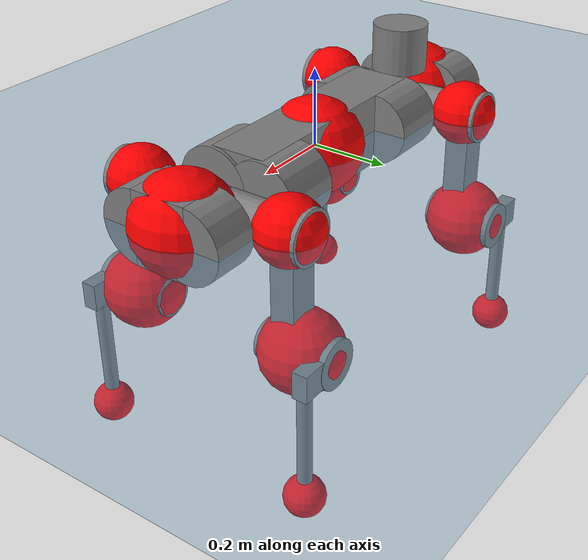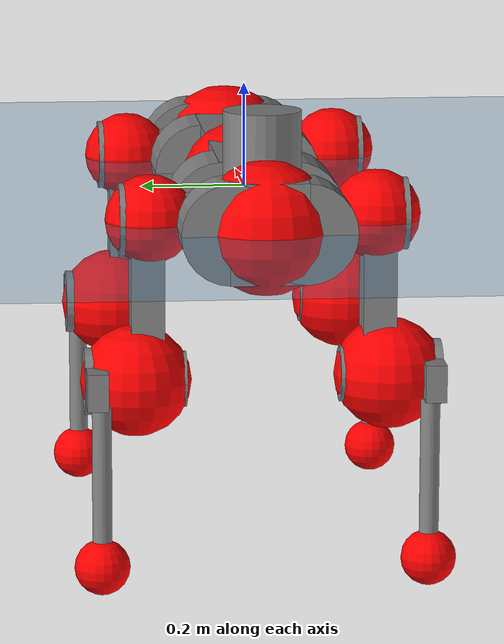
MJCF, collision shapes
<mujoco model="anymal_c">
  <compiler angle="radian" assetdir="assets" balanceinertia="true" inertiafromgeom="false"/>

  <option timestep="0.005" density="1.2" viscosity="2e-05"/>

  <size nkey="1"/>

  <visual>
    <quality shadowsize="8192"/>
    <map shadowclip="0.5"/>
  </visual>

  <default>
    <default class="/">
      <material specular="0" shininess="0.25"/>
      <geom contype="0" conaffinity="0" group="1" solref="-1000 -80"/>
      <site size="0.01 0.005 0.005" group="5"/>
      <general forcelimited="true" forcerange="-80 80" biastype="affine" gainprm="80" biasprm="0 -80 -2"/>
      <default class="anymal_c">
        <joint armature="0.01" damping="0.01" frictionloss="0.1"/>
        <default class="visual">
          <geom type="mesh" group="2"/>
          <default class="visual_zflip"/>
        </default>
        <default class="collision">
          <geom type="cylinder" group="3"/>
          <default class="foot">
            <geom size="0.03 0 0" type="sphere" condim="6" priority="1" friction="0.8 0.02 0.01" solimp="0.015 1 0.03"/>
          </default>
        </default>
      </default>
      <default class="reward_collision_sphere">
        <geom group="5" rgba="1 0 0 1"/>
      </default>
    </default>
  </default>

  <asset>
    <texture type="skybox" colorspace="auto" name="//unnamed_texture_0" builtin="gradient" rgb1="0.95 0.95 0.95" rgb2="0.95 0.95 0.95" width="100" height="600"/>
    <texture type="2d" colorspace="auto" name="texplane" builtin="checker" rgb1="0.345 0.575 0.748" rgb2="0.345 0.575 0.748" markrgb="1 1 1" width="512" height="512"/>
    <texture type="2d" colorspace="linear" name="base" file="base.png"/>
    <texture type="2d" colorspace="linear" name="top_shell" file="top_shell.png"/>
    <texture type="2d" colorspace="linear" name="bottom_shell" file="bottom_shell.png"/>
    <texture type="2d" colorspace="linear" name="remote" file="remote.png"/>
    <texture type="2d" colorspace="linear" name="hatch" file="hatch.png"/>
    <texture type="2d" colorspace="linear" name="handle" file="handle.png"/>
    <texture type="2d" colorspace="linear" name="face" file="face.png"/>
    <texture type="2d" colorspace="linear" name="battery" file="battery.png"/>
    <texture type="2d" colorspace="linear" name="lidar_cage" file="lidar_cage.png"/>
    <texture type="2d" colorspace="linear" name="depth_camera" file="depth_camera.png"/>
    <texture type="2d" colorspace="linear" name="wide_angle_camera" file="wide_angle_camera.png"/>
    <texture type="2d" colorspace="linear" name="lidar" file="lidar.png"/>
    <texture type="2d" colorspace="linear" name="drive" file="drive.png"/>
    <texture type="2d" colorspace="linear" name="hip_l" file="hip_l.png"/>
    <texture type="2d" colorspace="linear" name="shank_l" file="shank_l.png"/>
    <texture type="2d" colorspace="linear" name="foot" file="foot.png"/>
    <texture type="2d" colorspace="linear" name="thigh" file="thigh.png"/>
    <texture type="2d" colorspace="linear" name="shank_r" file="shank_r.png"/>
    <texture type="2d" colorspace="linear" name="hip_r" file="hip_r.png"/>
    <material name="MatPlane" class="/" texture="texplane" texuniform="true" texrepeat="2 2" specular="0.9" shininess="0.5"/>
    <material name="black_plastic" class="/" rgba="0.007 0.007 0.007 1"/>
    <material name="green" class="/" rgba="0.052 0.178 0.033 1"/>
    <material name="red" class="/" rgba="0.178 0.006 0.005 1"/>
    <material name="yellow" class="/" rgba="0.178 0.119 0.006 1"/>
    <material name="lwl" class="/" rgba="0.8 0.8 0.8 1"/>
    <material name="base" class="/" texture="base"/>
    <material name="top_shell" class="/" texture="top_shell"/>
    <material name="bottom_shell" class="/" texture="bottom_shell"/>
    <material name="hip_l" class="/" texture="hip_l"/>
    <material name="thigh" class="/" texture="thigh"/>
    <material name="shank_l" class="/" texture="shank_l"/>
    <material name="foot" class="/" texture="foot"/>
    <material name="hip_r" class="/" texture="hip_r"/>
    <material name="shank" class="/" texture="shank_r"/>
    <material name="hatch" class="/" texture="hatch"/>
    <material name="remote" class="/" texture="remote"/>
    <material name="handle" class="/" texture="handle"/>
    <material name="face" class="/" texture="face"/>
    <material name="depth_camera" class="/" texture="depth_camera"/>
    <material name="wide_angle_camera" class="/" texture="wide_angle_camera"/>
    <material name="battery" class="/" texture="battery"/>
    <material name="lidar_cage" class="/" texture="lidar_cage"/>
    <material name="lidar" class="/" texture="lidar"/>
    <material name="drive" class="/" texture="drive"/>
    <mesh name="base_0" class="/" file="base_0.obj"/>
    <mesh name="base_1" class="/" file="base_1.obj"/>
    <mesh name="base_2" class="/" file="base_2.obj"/>
    <mesh name="base_3" class="/" file="base_3.obj"/>
    <mesh name="base_4" class="/" file="base_4.obj"/>
    <mesh name="base_5" class="/" file="base_5.obj"/>
    <mesh name="top_shell" class="/" file="top_shell.obj"/>
    <mesh name="bottom_shell" class="/" file="bottom_shell.obj"/>
    <mesh name="remote" class="/" file="remote.obj"/>
    <mesh name="handle" class="/" file="handle.obj"/>
    <mesh name="face" class="/" file="face.obj"/>
    <mesh name="wide_angle_camera" class="/" file="wide_angle_camera.obj"/>
    <mesh name="depth_camera" class="/" file="depth_camera.obj"/>
    <mesh name="battery" class="/" file="battery.obj"/>
    <mesh name="lidar_cage" class="/" file="lidar_cage.obj"/>
    <mesh name="lidar" class="/" file="lidar.obj"/>
    <mesh name="drive" class="/" file="drive.obj"/>
    <mesh name="hip_l" class="/" file="hip_l.obj"/>
    <mesh name="thigh" class="/" file="thigh.obj"/>
    <mesh name="shank_l" class="/" file="shank_l.obj"/>
    <mesh name="foot" class="/" file="foot.obj"/>
    <mesh name="hip_r" class="/" file="hip_r.obj"/>
    <mesh name="hatch" class="/" file="hatch.obj"/>
    <mesh name="shank_r" class="/" file="shank_r.obj"/>
  </asset>

  <worldbody>
    <geom name="floor" class="/" size="100 100 0.125" type="plane" group="0" material="MatPlane"/>
    <light name="toplight_shadow" class="/" pos="0 0 5" dir="0.0990148 0.0990148 -0.990148" type="directional" ambient="0.04 0.04 0.04" diffuse="0.55 0.55 0.55" specular="0.12 0.12 0.12"/>
    <light name="toplight_fill" class="/" pos="0 0 5" dir="0.0990148 0.0990148 -0.990148" type="directional" castshadow="false" ambient="0.04 0.04 0.04" diffuse="0.3 0.3 0.3" specular="0.08 0.08 0.08"/>
    <body name="trunk" childclass="anymal_c" pos="-3.85258e-06 -0.000228128 0.000962568" quat="1 0.000492006 -0.000740317 -4.13404e-05">
      <inertial pos="0.00116386 -0.0026262 0.0501432" quat="0.498767 0.499152 0.50093 0.501147" mass="22.1877" diaginertia="0.958789 0.549453 0.292499"/>
      <joint name="//unnamed_joint_0" type="free" armature="0" damping="0" frictionloss="0"/>
      <geom name="//unnamed_geom_1" class="visual" material="green" mesh="base_0"/>
      <geom name="//unnamed_geom_2" class="visual" material="yellow" mesh="base_1"/>
      <geom name="//unnamed_geom_3" class="visual" material="red" mesh="base_2"/>
      <geom name="//unnamed_geom_4" class="visual" material="black_plastic" mesh="base_3"/>
      <geom name="//unnamed_geom_5" class="visual" material="lwl" mesh="base_4"/>
      <geom name="//unnamed_geom_6" class="visual" material="base" mesh="base_5"/>
      <geom name="trunk_1" class="collision" size="0.302069 0.0729131 0.0937455" type="box"/>
      <geom name="trunk_2" class="collision" size="0.0937455 0.0755172" pos="0.23595 0.0683474 0" quat="0.707107 0 0.707107 0"/>
      <geom name="trunk_3" class="collision" size="0.0937455 0.0755172" pos="-0.23595 0.0683474 0" quat="0.707107 0 0.707107 0"/>
      <geom name="trunk_4" class="collision" size="0.0937455 0.0755172" pos="0.23595 -0.0683474 0" quat="0.707107 0 0.707107 0"/>
      <geom name="trunk_5" class="collision" size="0.0937455 0.0755172" pos="-0.23595 -0.0683474 0" quat="0.707107 0 0.707107 0"/>
      <geom name="//unnamed_geom_12" class="visual" material="top_shell" mesh="top_shell"/>
      <geom name="//unnamed_geom_13" class="visual" material="bottom_shell" mesh="bottom_shell"/>
      <geom name="//unnamed_geom_14" class="visual" material="remote" mesh="remote"/>
      <geom name="//unnamed_geom_15" class="visual" material="handle" mesh="handle"/>
      <geom name="//unnamed_geom_16" class="visual" pos="0.44966 0 0" quat="1 0 0 0" material="face" mesh="face"/>
      <geom name="trunk_6" class="collision" size="0.0572889 0.0729131 0.0937455" pos="0.509326 0 0" type="box"/>
      <geom name="//unnamed_geom_18" class="collision" size="0.0937455 0.0572889" pos="0.509326 0.0683474 0" quat="0.707107 0 0.707107 0"/>
      <geom name="//unnamed_geom_19" class="collision" size="0.0937455 0.0572889" pos="0.509326 -0.0683474 0" quat="0.707107 0 0.707107 0"/>
      <geom name="//unnamed_geom_20" class="visual" pos="0.500809 0 -0.030897" quat="0.965926 0 0.258819 0" material="depth_camera" mesh="depth_camera"/>
      <geom name="//unnamed_geom_21" class="visual" pos="0.556516 0 0.0159226" material="wide_angle_camera" mesh="wide_angle_camera"/>
      <geom name="//unnamed_geom_22" class="visual_zflip" pos="-0.44966 0 0" quat="0 0 0 1" material="face" mesh="face"/>
      <geom name="trunk_7" class="collision" size="0.0572889 0.0729131 0.0937455" pos="-0.509326 0 0" quat="0 0 0 1" type="box"/>
      <geom name="//unnamed_geom_24" class="collision" size="0.0937455 0.0572889" pos="-0.509326 -0.0683474 0" quat="0 -0.707107 0 0.707107"/>
      <geom name="//unnamed_geom_25" class="collision" size="0.0937455 0.0572889" pos="-0.509326 0.0683474 0" quat="0 -0.707107 0 0.707107"/>
      <geom name="//unnamed_geom_26" class="visual" pos="-0.500809 0 -0.030897" quat="0 -0.258819 0 0.965926" material="depth_camera" mesh="depth_camera"/>
      <geom name="//unnamed_geom_27" class="visual_zflip" pos="-0.556516 0 0.0159226" quat="0 0 0 1" material="wide_angle_camera" mesh="wide_angle_camera"/>
      <geom name="//unnamed_geom_28" class="visual" material="battery" mesh="battery"/>
      <geom name="//unnamed_geom_29" class="visual" pos="0 0.0732311 0.0310596" quat="0.683013 -0.183013 0.183013 0.683013" material="depth_camera" mesh="depth_camera"/>
      <geom name="//unnamed_geom_30" class="visual" pos="0 -0.0732311 0.0310596" quat="0.683013 0.183013 0.183013 -0.683013" material="depth_camera" mesh="depth_camera"/>
      <geom name="//unnamed_geom_31" class="visual" pos="-0.394877 0 0.078177" quat="1 0 0 0" material="lidar_cage" mesh="lidar_cage"/>
      <geom name="trunk_8" class="collision" size="0.0729131 0.062497" pos="-0.394877 0 0.141995"/>
      <geom name="//unnamed_geom_33" class="visual" pos="-0.394877 -4.26012e-05 0.151249" quat="0.707107 0 0 -0.707107" material="lidar" mesh="lidar"/>
      <geom name="//unnamed_geom_34" class="visual" pos="0.325339 0.101576 -1.50493e-09" quat="0.258819 0.965926 0 0" material="drive" mesh="drive"/>
      <geom name="//unnamed_geom_35" class="visual" pos="0.325339 -0.101576 1.50493e-09" quat="0.258819 -0.965926 0 0" material="drive" mesh="drive"/>
      <geom name="//unnamed_geom_36" class="visual" pos="-0.325339 0.101576 1.50493e-09" quat="0 0 0.965926 -0.258819" material="drive" mesh="drive"/>
      <geom name="//unnamed_geom_37" class="visual" pos="-0.325339 -0.101576 -1.50493e-09" quat="0 0 -0.965926 -0.258819" material="drive" mesh="drive"/>
      <geom name="//unnamed_geom_38" class="visual" pos="0.12584 0 0.0776452" quat="1 0 0 0" material="hatch" mesh="hatch"/>
      <geom name="//unnamed_geom_39" class="reward_collision_sphere" size="0.124994"/>
      <geom name="//unnamed_geom_40" class="reward_collision_sphere" size="0.124994" pos="0.488172 0 0"/>
      <geom name="//unnamed_geom_41" class="reward_collision_sphere" size="0.124994" pos="-0.488172 0 0"/>
      <site name="imu" pos="0.281463 0.00720951 0.0375724" size="0.0104162"/>
      <camera name="track" pos="0 -1.95278 0" quat="0.707107 0.707107 0 0" mode="trackcom"/>
      <camera name="ego_camera" pos="0.488172 0 -0.0425453" quat="-0.5 -0.5 0.5 0.5"/>
      <body name="LF_HIP" pos="0.322948 0.098892 -0.00141783" quat="0.258942 0.965893 0.000434791 0.000276867">
        <inertial pos="0.0613595 -0.0174695 -0.00772798" quat="-0.127959 0.710296 -0.134661 0.678949" mass="3.16806" diaginertia="0.00869177 0.00413423 0.00437821"/>
        <joint name="LF_HAA" pos="0 0 0" axis="0.999997 0.0019429 0.00153011" range="-0.724165 0.520042" armature="0.0103152" damping="0.0235804" frictionloss="0.0898132"/>
        <geom name="//unnamed_geom_42" class="visual" pos="0 -8.85281e-05 1.45407e-05" quat="0.258819 -0.965926 0 0" material="hip_l" mesh="hip_l"/>
        <geom name="//unnamed_geom_43" class="visual" pos="0.0649811 -0.0773417 -0.0452985" quat="0.183013 -0.683013 0.683013 0.183013" material="drive" mesh="drive"/>
        <geom name="//unnamed_geom_44" class="collision" size="0.0520808 0.0729131" pos="0.0649811 -0.0116774 -0.00734438" quat="-0.353553 -0.612372 0.612372 -0.353553"/>
        <body name="LF_THIGH" pos="0.0630052 -0.0685848 -0.0431667" quat="0.181782 -0.683029 0.683287 0.183155">
          <inertial pos="0.033185 0.000135303 -0.25894" quat="0.992542 -0.0187064 -0.0831121 0.0871995" mass="3.38744" diaginertia="0.0460868 0.0262286 0.00579799"/>
          <joint name="LF_HFE" pos="0 0 0" axis="0.999998 -0.000392748 -0.00210579" stiffness="0.00406494" range="-3.09085 3.19261" armature="0.0104315" damping="0.022052" frictionloss="0.0915433"/>
          <geom name="//unnamed_geom_45" class="visual" pos="0.00215743 3.3996e-06 0" quat="0.707107 0 0 -0.707107" material="thigh" mesh="thigh"/>
          <geom name="//unnamed_geom_46" class="collision" size="0.0677051 0.0416647" pos="0.043393 0 0" quat="0.5 0.5 -0.5 -0.5"/>
          <geom name="//unnamed_geom_47" class="collision" size="0.0390606 0.0312485 0.147195" pos="0.0325448 0 -0.150306" quat="0.707107 0 0 -0.707107" type="box"/>
          <geom name="//unnamed_geom_48" class="visual" pos="0.108808 0 -0.303135" quat="1 0 0 0" material="drive" mesh="drive"/>
          <geom name="//unnamed_geom_49" class="collision" size="0.0520808 0.0729131" pos="0.0328702 0 -0.303135" quat="0.707107 0 0.707107 0"/>
          <geom name="//unnamed_geom_50" class="reward_collision_sphere" size="0.0833293" pos="0.0271206 0 0"/>
          <body name="LF_SHANK" pos="0.110149 0.00259809 -0.301834" quat="1 -1.23972e-05 -8.2375e-06 1.04386e-05">
            <inertial pos="0.00550292 -0.0602568 -0.0877828" quat="0.992974 -0.115673 0.00100515 -0.0249444" mass="0.675035" diaginertia="0.0148971 0.00817791 0.00152912"/>
            <joint name="LF_KFE" pos="0 0 0" axis="0.999981 -0.00462425 0.00406526" range="-3.08623 3.14961" armature="0.0108481" damping="0.00436842" frictionloss="0.106814"/>
            <geom name="//unnamed_geom_51" class="visual" pos="0.000703491 0.00375105 0" quat="0.707107 0 0 -0.707107" material="shank_l" mesh="shank_l"/>
            <geom name="LF_kfe_act" class="collision" size="0.062497 0.0208323" pos="0.0216965 0 0" quat="0.5 0.5 -0.5 -0.5"/>
            <geom name="//unnamed_geom_53" class="collision" size="0.0598919 0.0351545 0.0197907" pos="0.0216965 -0.0561415 0" quat="0.5 0.5 -0.5 -0.5" type="box"/>
            <geom name="//unnamed_geom_54" class="visual" pos="0.0141568 -0.0846648 -0.359476" quat="0.382683 0 0 -0.92388" material="foot" mesh="foot"/>
            <geom name="LF_calf" class="collision" size="0.0182283 0.14713" pos="0.014157 -0.0858736 -0.179738" quat="0.707107 0 0 -0.707107"/>
            <geom name="LF_foot" class="foot" size="0.0309052" pos="0.014157 -0.0858736 -0.335544" quat="0.707107 0 0 -0.707107"/>
            <geom name="//unnamed_geom_57" class="reward_collision_sphere" size="0.104162" pos="-0.0542413 0 0"/>
            <geom name="//unnamed_geom_58" class="reward_collision_sphere" size="0.0520808" pos="0.014157 -0.0858736 -0.335544"/>
            <site name="LF_foot" class="foot" pos="0.014157 -0.0858736 -0.335544" quat="0.707107 0 0 -0.707107" size="0.0104162"/>
          </body>
        </body>
      </body>
      <body name="RF_HIP" pos="0.323453 -0.102006 0.000275053" quat="0.258771 -0.965939 -2.09315e-06 -0.000112088">
        <inertial pos="0.0589635 0.0137539 -0.0116436" quat="0.141229 0.674112 0.124817 0.714176" mass="3.13947" diaginertia="0.00839841 0.00444466 0.00427219"/>
        <joint name="RF_HAA" pos="0 0 0" axis="0.999926 0.00647142 0.0103371" range="-0.511895 0.727083" armature="0.0107136" damping="0" frictionloss="0.110173"/>
        <geom name="//unnamed_geom_59" class="visual" pos="0 8.85274e-05 1.45406e-05" quat="0.258819 0.965926 0 0" material="hip_r" mesh="hip_r"/>
        <geom name="//unnamed_geom_60" class="visual" pos="0.0649811 0.0773417 -0.0452985" quat="0.183013 0.683013 0.683013 -0.183013" material="drive" mesh="drive"/>
        <geom name="//unnamed_geom_61" class="collision" size="0.0520808 0.0729131" pos="0.0649811 0.0116774 -0.00734438" quat="-0.353553 0.612372 0.612372 0.353553"/>
        <body name="RF_THIGH" pos="0.0675628 0.0691084 -0.0470534" quat="0.182498 0.682654 0.6837 -0.182299">
          <inertial pos="0.0357521 -0.000632343 -0.263435" quat="0.991931 -0.0051353 -0.0929922 0.0860216" mass="3.62408" diaginertia="0.0443252 0.0258423 0.00591088"/>
          <joint name="RF_HFE" pos="0 0 0" axis="1 -0.00074886 -0.000503854" range="-3.12502 3.15307" armature="0.00912951" damping="0.0103773" frictionloss="0.112368"/>
          <geom name="//unnamed_geom_62" class="visual" pos="0.00215743 3.3996e-06 0" quat="0.707107 0 0 -0.707107" material="thigh" mesh="thigh"/>
          <geom name="//unnamed_geom_63" class="collision" size="0.0677051 0.0416647" pos="0.043393 0 0" quat="0.5 0.5 0.5 0.5"/>
          <geom name="//unnamed_geom_64" class="collision" size="0.0390606 0.0312485 0.147195" pos="0.0325448 0 -0.150306" quat="0.707107 0 0 0.707107" type="box"/>
          <geom name="//unnamed_geom_65" class="visual" pos="0.108808 0 -0.303135" quat="1 0 0 0" material="drive" mesh="drive"/>
          <geom name="//unnamed_geom_66" class="collision" size="0.0520808 0.0729131" pos="0.0328702 0 -0.303135" quat="0.707107 0 0.707107 0"/>
          <geom name="//unnamed_geom_67" class="reward_collision_sphere" size="0.0833293" pos="0.0271206 0 0"/>
          <body name="RF_SHANK" pos="0.10588 0.000636199 -0.30382" quat="0.999999 -0.000272149 -0.000106629 0.00117341">
            <inertial pos="0.0033089 0.0599574 -0.0856245" quat="0.99215 0.12269 -0.00754574 0.0229724" mass="0.709985" diaginertia="0.0161081 0.00829125 0.00158219"/>
            <joint name="RF_KFE" pos="0 0 0" axis="0.999998 -0.000860865 0.00180072" range="-3.1829 3.0852" armature="0.0120244" damping="0.020413" frictionloss="0.113589"/>
            <geom name="//unnamed_geom_68" class="visual" pos="0.000703487 -0.00375104 0" quat="0.707107 0 0 0.707107" material="shank" mesh="shank_r"/>
            <geom name="RF_kfe_act" class="collision" size="0.062497 0.0208323" pos="0.0216965 0 0" quat="0.5 0.5 0.5 0.5"/>
            <geom name="//unnamed_geom_70" class="collision" size="0.0598919 0.0351545 0.0197907" pos="0.0216965 0.0561415 0" quat="0.5 0.5 0.5 0.5" type="box"/>
            <geom name="//unnamed_geom_71" class="visual" pos="0.0141571 0.0846648 -0.359476" quat="0.382683 0 0 0.92388" material="foot" mesh="foot"/>
            <geom name="RF_calf" class="collision" size="0.0182283 0.14713" pos="0.014157 0.0858736 -0.179738" quat="0.707107 0 0 0.707107"/>
            <geom name="RF_foot" class="foot" size="0.0279635" pos="0.014157 0.0858736 -0.335544" quat="0.707107 0 0 0.707107"/>
            <geom name="//unnamed_geom_74" class="reward_collision_sphere" size="0.104162" pos="-0.0542413 0 0"/>
            <geom name="//unnamed_geom_75" class="reward_collision_sphere" size="0.0520808" pos="0.014157 0.0858736 -0.335544"/>
            <site name="RF_foot" class="foot" pos="0.014157 0.0858736 -0.335544" quat="0.707107 0 0 0.707107" size="0.0104162"/>
          </body>
        </body>
      </body>
      <body name="LH_HIP" pos="-0.322311 0.0992769 -0.00171352" quat="8.90652e-05 0.000187105 0.965946 -0.258745">
        <inertial pos="0.0614407 0.0174715 -0.0109245" quat="0.12257 0.675995 0.129183 0.715066" mass="3.22141" diaginertia="0.00919435 0.00450775 0.00446822"/>
        <joint name="LH_HAA" pos="0 0 0" axis="0.999889 -0.00261971 -0.0146703" range="-0.502712 0.745862" armature="0.0110917" damping="0" frictionloss="0.103429"/>
        <geom name="//unnamed_geom_76" class="visual" pos="0 8.85274e-05 1.45406e-05" quat="-0.258819 -0.965926 0 0" material="hip_r" mesh="hip_r"/>
        <geom name="//unnamed_geom_77" class="visual" pos="0.0649811 0.0773417 -0.0452985" quat="0.183013 0.683013 0.683013 -0.183013" material="drive" mesh="drive"/>
        <geom name="//unnamed_geom_78" class="collision" size="0.0520808 0.0729131" pos="0.0649811 0.0116774 -0.00734438" quat="-0.353553 0.612372 0.612372 0.353553"/>
        <body name="LH_THIGH" pos="0.0639365 0.0693896 -0.043749" quat="0.182837 0.682963 0.683075 -0.183142">
          <inertial pos="0.0319666 0.000669601 -0.26326" quat="0.992562 -0.00348863 -0.0810195 0.0907932" mass="3.28572" diaginertia="0.0428884 0.0264885 0.00557648"/>
          <joint name="LH_HFE" pos="0 0 0" axis="0.999999 0.000903989 0.0014069" stiffness="0.0097627" range="-3.18653 3.08496" armature="0.0100984" damping="0" frictionloss="0.105837"/>
          <geom name="//unnamed_geom_79" class="visual" pos="0.00215743 3.3996e-06 0" quat="0.707107 0 0 -0.707107" material="thigh" mesh="thigh"/>
          <geom name="//unnamed_geom_80" class="collision" size="0.0677051 0.0416647" pos="0.043393 0 0" quat="0.5 0.5 -0.5 -0.5"/>
          <geom name="//unnamed_geom_81" class="collision" size="0.0390606 0.0312485 0.147195" pos="0.0325448 0 -0.150306" quat="0.707107 0 0 -0.707107" type="box"/>
          <geom name="//unnamed_geom_82" class="visual" pos="0.108808 0 -0.303135" quat="1 0 0 0" material="drive" mesh="drive"/>
          <geom name="//unnamed_geom_83" class="collision" size="0.0520808 0.0729131" pos="0.0328702 0 -0.303135" quat="0.707107 0 0.707107 0"/>
          <geom name="//unnamed_geom_84" class="reward_collision_sphere" size="0.0833293" pos="0.0271206 0 0"/>
          <body name="LH_SHANK" pos="0.107802 9.97652e-05 -0.304384" quat="1 2.08532e-05 7.5242e-06 -1.31114e-05">
            <inertial pos="0.00811031 0.062333 -0.0864918" quat="0.993868 0.10799 -0.0107383 0.0211859" mass="0.678546" diaginertia="0.0150046 0.00861945 0.00156113"/>
            <joint name="LH_KFE" pos="0 0 0" axis="0.999999 -0.000488142 -0.00102254" range="-3.09018 3.08403" armature="0.011651" damping="0.02124" frictionloss="0.0898306"/>
            <geom name="//unnamed_geom_85" class="visual" pos="0.000703487 -0.00375104 0" quat="-0.707107 0 0 -0.707107" material="shank" mesh="shank_r"/>
            <geom name="LH_kfe_act" class="collision" size="0.062497 0.0208323" pos="0.0216965 0 0" quat="0.5 0.5 -0.5 -0.5"/>
            <geom name="//unnamed_geom_87" class="collision" size="0.0598919 0.0351545 0.0197907" pos="0.0216965 0.0561415 0" quat="0.5 0.5 -0.5 -0.5" type="box"/>
            <geom name="//unnamed_geom_88" class="visual" pos="0.0141571 0.0846648 -0.359476" quat="-0.382683 0 0 -0.92388" material="foot" mesh="foot"/>
            <geom name="LH_calf" class="collision" size="0.0182283 0.14713" pos="0.014157 0.0858736 -0.179738" quat="0.707107 0 0 -0.707107"/>
            <geom name="LH_foot" class="foot" size="0.0353374" pos="0.014157 0.0858736 -0.335544" quat="0.707107 0 0 -0.707107"/>
            <geom name="//unnamed_geom_91" class="reward_collision_sphere" size="0.104162" pos="-0.0542413 0 0"/>
            <geom name="//unnamed_geom_92" class="reward_collision_sphere" size="0.0520808" pos="0.014157 0.0858736 -0.335544"/>
            <site name="LH_foot" class="foot" pos="0.014157 0.0858736 -0.335544" quat="0.707107 0 0 -0.707107" size="0.0104162"/>
          </body>
        </body>
      </body>
      <body name="RH_HIP" pos="-0.323756 -0.102772 0.00204554" quat="0.000191588 3.88344e-05 -0.9659 -0.258916">
        <inertial pos="0.0589251 -0.0127793 -0.0110203" quat="-0.133084 0.710927 -0.131522 0.677918" mass="3.18327" diaginertia="0.0085845 0.00430194 0.00440299"/>
        <joint name="RH_HAA" pos="0 0 0" axis="0.999921 -0.00920014 -0.00859342" range="-0.77272 0.539456" armature="0.00962335" damping="0.000186182" frictionloss="0.103241"/>
        <geom name="//unnamed_geom_93" class="visual" pos="0 -8.85281e-05 1.45407e-05" quat="-0.258819 0.965926 0 0" material="hip_l" mesh="hip_l"/>
        <geom name="//unnamed_geom_94" class="visual" pos="0.0649811 -0.0773417 -0.0452985" quat="-0.183013 0.683013 -0.683013 -0.183013" material="drive" mesh="drive"/>
        <geom name="//unnamed_geom_95" class="collision" size="0.0520808 0.0729131" pos="0.0649811 -0.0116774 -0.00734438" quat="0.353553 0.612372 -0.612372 0.353553"/>
        <body name="RH_THIGH" pos="0.0668363 -0.0693166 -0.0464216" quat="-0.182915 0.683188 -0.683206 -0.181729">
          <inertial pos="0.0333233 0.00238331 -0.26129" quat="0.99328 -0.00506489 -0.0792886 0.0841532" mass="3.23602" diaginertia="0.0423827 0.0259342 0.00557979"/>
          <joint name="RH_HFE" pos="0 0 0" axis="0.999995 0.00308646 -8.1224e-05" range="-3.09022 3.13835" armature="0.0108392" damping="0.0184869" frictionloss="0.103004"/>
          <geom name="//unnamed_geom_96" class="visual" pos="0.00215743 3.3996e-06 0" quat="0.707107 0 0 -0.707107" material="thigh" mesh="thigh"/>
          <geom name="//unnamed_geom_97" class="collision" size="0.0677051 0.0416647" pos="0.043393 0 0" quat="0.5 0.5 0.5 0.5"/>
          <geom name="//unnamed_geom_98" class="collision" size="0.0390606 0.0312485 0.147195" pos="0.0325448 0 -0.150306" quat="0.707107 0 0 0.707107" type="box"/>
          <geom name="//unnamed_geom_99" class="visual" pos="0.108808 0 -0.303135" quat="1 0 0 0" material="drive" mesh="drive"/>
          <geom name="//unnamed_geom_100" class="collision" size="0.0520808 0.0729131" pos="0.0328702 0 -0.303135" quat="0.707107 0 0.707107 0"/>
          <geom name="//unnamed_geom_101" class="reward_collision_sphere" size="0.0833293" pos="0.0271206 0 0"/>
          <body name="RH_SHANK" pos="0.108185 0.0026586 -0.302869" quat="0.999999 -0.000139407 0.000896684 -0.00072219">
            <inertial pos="0.00879858 -0.061371 -0.0856645" quat="0.991602 -0.127499 -0.00725924 -0.0204348" mass="0.670781" diaginertia="0.014823 0.00819999 0.00147972"/>
            <joint name="RH_KFE" pos="0 0 0" axis="0.999994 0.00103206 -0.00339007" range="-3.12484 3.18538" armature="0.0102404" damping="0.0208397" frictionloss="0.113326"/>
            <geom name="//unnamed_geom_102" class="visual" pos="0.000703491 0.00375105 0" quat="0.707107 0 0 -0.707107" material="shank_l" mesh="shank_l"/>
            <geom name="RH_kfe_act" class="collision" size="0.062497 0.0208323" pos="0.0216965 0 0" quat="0.5 0.5 0.5 0.5"/>
            <geom name="//unnamed_geom_104" class="collision" size="0.0598919 0.0351545 0.0197907" pos="0.0216965 -0.0561415 0" quat="0.5 0.5 0.5 0.5" type="box"/>
            <geom name="//unnamed_geom_105" class="visual" pos="0.0141568 -0.0846648 -0.359476" quat="0.382683 0 0 -0.92388" material="foot" mesh="foot"/>
            <geom name="RH_calf" class="collision" size="0.0182283 0.14713" pos="0.014157 -0.0858736 -0.179738" quat="0.707107 0 0 0.707107"/>
            <geom name="RH_foot" class="foot" size="0.0269125" pos="0.014157 -0.0858736 -0.335544" quat="0.707107 0 0 0.707107"/>
            <geom name="//unnamed_geom_108" class="reward_collision_sphere" size="0.104162" pos="-0.0542413 0 0"/>
            <geom name="//unnamed_geom_109" class="reward_collision_sphere" size="0.0520808" pos="0.014157 -0.0858736 -0.335544"/>
            <site name="RH_foot" class="foot" pos="0.014157 -0.0858736 -0.335544" quat="0.707107 0 0 0.707107" size="0.0104162"/>
          </body>
        </body>
      </body>
    </body>
  </worldbody>

  <contact>
    <pair class="/" geom1="floor" geom2="LF_foot" name="//unnamed_contact_0"/>
    <pair class="/" geom1="floor" geom2="RF_foot" name="//unnamed_contact_1"/>
    <pair class="/" geom1="floor" geom2="LH_foot" name="//unnamed_contact_2"/>
    <pair class="/" geom1="floor" geom2="RH_foot" name="//unnamed_contact_3"/>
  </contact>

  <actuator>
    <general name="LF_HAA" class="/" joint="LF_HAA" forcerange="-75.2523 75.2523" gainprm="78.5269" biasprm="0 -78.5269 -2.07059"/>
    <general name="LF_HFE" class="/" joint="LF_HFE" forcerange="-76.5781 76.5781" gainprm="78.5269" biasprm="0 -78.5269 -2.07059"/>
    <general name="LF_KFE" class="/" joint="LF_KFE" forcerange="-81.6119 81.6119" gainprm="78.5269" biasprm="0 -78.5269 -2.07059"/>
    <general name="RF_HAA" class="/" joint="RF_HAA" forcerange="-82.6904 82.6904" gainprm="78.5269" biasprm="0 -78.5269 -2.07059"/>
    <general name="RF_HFE" class="/" joint="RF_HFE" forcerange="-93.736 93.736" gainprm="78.5269" biasprm="0 -78.5269 -2.07059"/>
    <general name="RF_KFE" class="/" joint="RF_KFE" forcerange="-85.5855 85.5855" gainprm="78.5269" biasprm="0 -78.5269 -2.07059"/>
    <general name="LH_HAA" class="/" joint="LH_HAA" forcerange="-84.5194 84.5194" gainprm="78.5269" biasprm="0 -78.5269 -2.07059"/>
    <general name="LH_HFE" class="/" joint="LH_HFE" forcerange="-75.0526 75.0526" gainprm="78.5269" biasprm="0 -78.5269 -2.07059"/>
    <general name="LH_KFE" class="/" joint="LH_KFE" forcerange="-89.0028 89.0028" gainprm="78.5269" biasprm="0 -78.5269 -2.07059"/>
    <general name="RH_HAA" class="/" joint="RH_HAA" forcerange="-86.4104 86.4104" gainprm="78.5269" biasprm="0 -78.5269 -2.07059"/>
    <general name="RH_HFE" class="/" joint="RH_HFE" forcerange="-92.0415 92.0415" gainprm="78.5269" biasprm="0 -78.5269 -2.07059"/>
    <general name="RH_KFE" class="/" joint="RH_KFE" forcerange="-82.2855 82.2855" gainprm="78.5269" biasprm="0 -78.5269 -2.07059"/>
  </actuator>

  <sensor>
    <gyro site="imu" name="imu_angular_velocity"/>
    <velocimeter site="imu" name="imu_linear_velocity"/>
    <framelinvel objtype="site" objname="LF_foot" name="LF_foot_global_linear_velocity"/>
    <framelinvel objtype="site" objname="RF_foot" name="RF_foot_global_linear_velocity"/>
    <framelinvel objtype="site" objname="LH_foot" name="LH_foot_global_linear_velocity"/>
    <framelinvel objtype="site" objname="RH_foot" name="RH_foot_global_linear_velocity"/>
  </sensor>

  <keyframe>
    <key name="home" qpos="0 0 0.55 1 0 0 0 0 0.4 -0.8 0 -0.4 0.8 0 -0.4 0.8 0 0.4 -0.8"/>
  </keyframe>
</mujoco>
